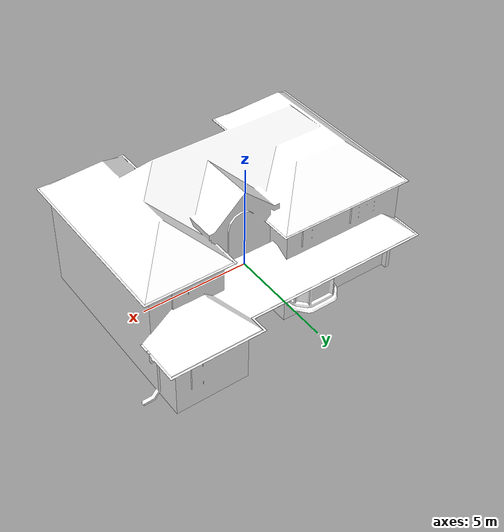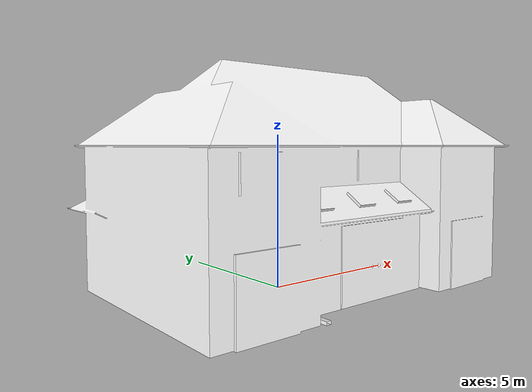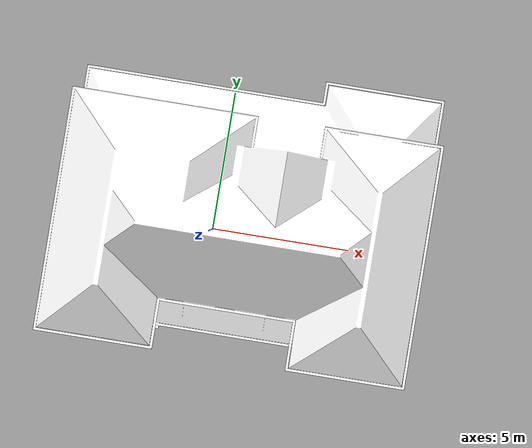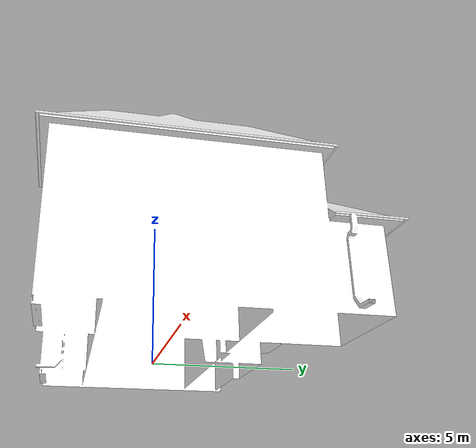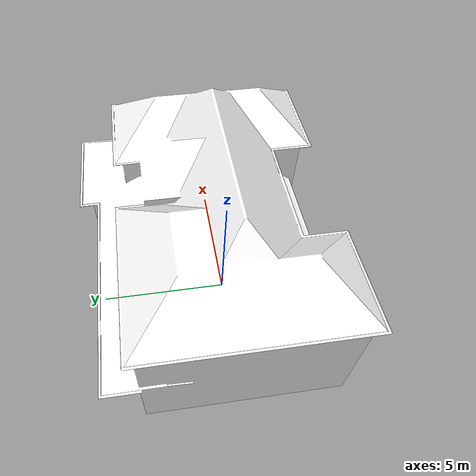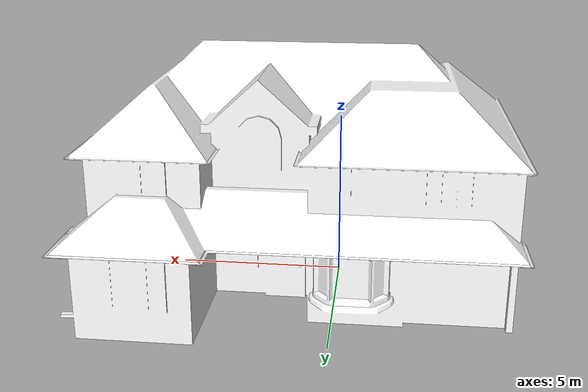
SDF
<?xml version="1.0" ?>
<sdf version="1.5">
  <model name="House 2">
    <static>true</static>
    <link name="link">
      <collision name="collision">
        <geometry>
          <mesh>
            <uri>model://house_2/meshes/house_2.dae</uri>
            <scale>1.5 1.5 1.5</scale>
          </mesh>
        </geometry>
      </collision>
      <visual name="visual">
        <geometry>
          <mesh>
            <uri>model://house_2/meshes/house_2.dae</uri>
            <scale>1.5 1.5 1.5</scale>
          </mesh>
        </geometry>
        <material>
          <ambient>1 1 1 1</ambient>
          <diffuse>1 1 1 1</diffuse>
          <script>
            <uri>model://house_2/materials/scripts</uri>
            <uri>model://house_2/materials/textures</uri>
            <uri>model://house_1/materials/textures</uri>
            <name>House_2/Diffuse</name>
          </script>
          <shader type="normal_map_tangent_space">
            <normal_map>model://house_1/materials/textures/House_1_Normal.png</normal_map>
          </shader>
          <pbr>
            <metal>
              <albedo_map>model://house_2/materials/textures/House_2_Diffuse.png</albedo_map>
              <roughness>0.84</roughness>
              <metalness>0.0</metalness>
            </metal>
          </pbr>
        </material>
      </visual>
    </link>
  </model>
</sdf>
